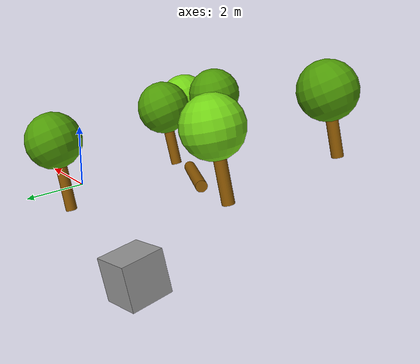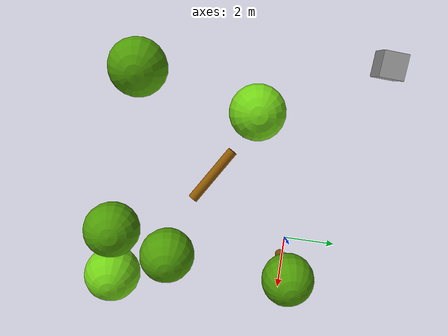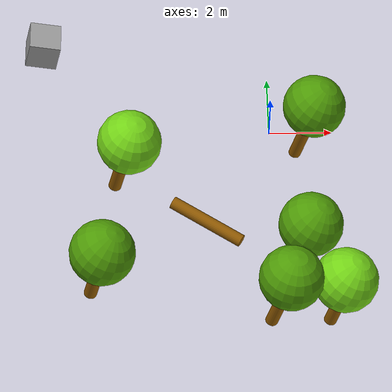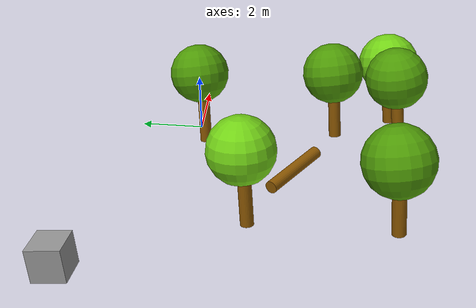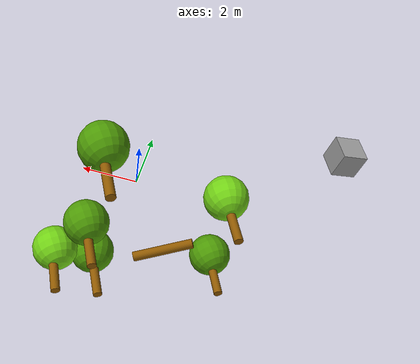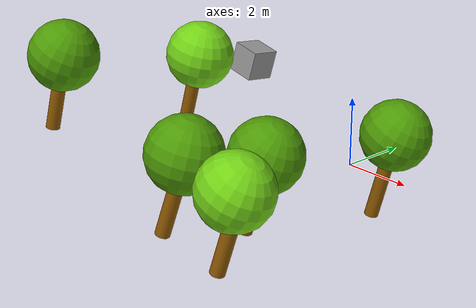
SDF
<?xml version='1.0'?>
<sdf version='1.7'>
  <model name='Obstaculos'>
    <link name='link_3_0'>
      <inertial>
        <mass>1</mass>
        <inertia>
          <ixx>0.166667</ixx>
          <ixy>0</ixy>
          <ixz>0</ixz>
          <iyy>0.166667</iyy>
          <iyz>0</iyz>
          <izz>0.166667</izz>
        </inertia>
      </inertial>
      <pose>-7.21827 2.9354 0.928625 -0.113285 0.207225 -0.035268</pose>
      <self_collide>0</self_collide>
      <enable_wind>0</enable_wind>
      <kinematic>0</kinematic>
      <visual name='visual'>
        <pose>0 0 0 0 -0 0</pose>
        <geometry>
          <box>
            <size>1 1 1</size>
          </box>
        </geometry>
        <material>
          <lighting>1</lighting>
          <script>
            <uri>file://media/materials/scripts/gazebo.material</uri>
            <name>Gazebo/Grey</name>
          </script>
          <shader type='pixel'/>
        </material>
        <transparency>0</transparency>
        <cast_shadows>1</cast_shadows>
      </visual>
      <collision name='collision'>
        <laser_retro>0</laser_retro>
        <max_contacts>10</max_contacts>
        <pose>0 0 0 0 -0 0</pose>
        <geometry>
          <box>
            <size>1 1 1</size>
          </box>
        </geometry>
        <surface>
          <friction>
            <ode>
              <mu>1</mu>
              <mu2>1</mu2>
              <fdir1>0 0 0</fdir1>
              <slip1>0</slip1>
              <slip2>0</slip2>
            </ode>
            <torsional>
              <coefficient>1</coefficient>
              <patch_radius>0</patch_radius>
              <surface_radius>0</surface_radius>
              <use_patch_radius>1</use_patch_radius>
              <ode>
                <slip>0</slip>
              </ode>
            </torsional>
          </friction>
          <bounce>
            <restitution_coefficient>0</restitution_coefficient>
            <threshold>1e+06</threshold>
          </bounce>
          <contact>
            <collide_without_contact>0</collide_without_contact>
            <collide_without_contact_bitmask>1</collide_without_contact_bitmask>
            <collide_bitmask>1</collide_bitmask>
            <ode>
              <soft_cfm>0</soft_cfm>
              <soft_erp>0.2</soft_erp>
              <kp>1e+13</kp>
              <kd>1</kd>
              <max_vel>0.01</max_vel>
              <min_depth>0</min_depth>
            </ode>
            <bullet>
              <split_impulse>1</split_impulse>
              <split_impulse_penetration_threshold>-0.01</split_impulse_penetration_threshold>
              <soft_cfm>0</soft_cfm>
              <soft_erp>0.2</soft_erp>
              <kp>1e+13</kp>
              <kd>1</kd>
            </bullet>
          </contact>
        </surface>
      </collision>
    </link>
    <link name='link_3_clone'>
      <inertial>
        <mass>1</mass>
        <inertia>
          <ixx>0.145833</ixx>
          <ixy>0</ixy>
          <ixz>0</ixz>
          <iyy>0.145833</iyy>
          <iyz>0</iyz>
          <izz>0.125</izz>
        </inertia>
        <pose>0 0 0 0 -0 0</pose>
      </inertial>
      <pose>-4.67416 -1.93226 1.58186 -0.074828 0.21866 0</pose>
      <gravity>1</gravity>
      <self_collide>0</self_collide>
      <kinematic>0</kinematic>
      <enable_wind>0</enable_wind>
      <visual name='visual'>
        <pose>0 0 0 0 -0 0</pose>
        <geometry>
          <cylinder>
            <radius>0.2</radius>
            <length>2.5</length>
          </cylinder>
        </geometry>
        <material>
          <lighting>1</lighting>
          <script>
            <uri>file://media/materials/scripts/gazebo.material</uri>
            <name>Gazebo/Grey</name>
          </script>
          <shader type='pixel'>
            <normal_map>__default__</normal_map>
          </shader>
          <ambient>0.561 0.349 0.008 1</ambient>
          <diffuse>0.561 0.349 0.008 1</diffuse>
          <specular>0.561 0.349 0.008 1</specular>
          <emissive>0.561 0.349 0.008 1</emissive>
        </material>
        <transparency>0</transparency>
        <cast_shadows>1</cast_shadows>
      </visual>
      <collision name='collision'>
        <laser_retro>0</laser_retro>
        <max_contacts>10</max_contacts>
        <pose>0 0 0 0 -0 0</pose>
        <geometry>
          <cylinder>
            <radius>0.2</radius>
            <length>2.5</length>
          </cylinder>
        </geometry>
        <surface>
          <friction>
            <ode>
              <mu>1</mu>
              <mu2>1</mu2>
              <fdir1>0 0 0</fdir1>
              <slip1>0</slip1>
              <slip2>0</slip2>
            </ode>
            <torsional>
              <coefficient>1</coefficient>
              <patch_radius>0</patch_radius>
              <surface_radius>0</surface_radius>
              <use_patch_radius>1</use_patch_radius>
              <ode>
                <slip>0</slip>
              </ode>
            </torsional>
          </friction>
          <bounce>
            <restitution_coefficient>0</restitution_coefficient>
            <threshold>1e+06</threshold>
          </bounce>
          <contact>
            <collide_without_contact>0</collide_without_contact>
            <collide_without_contact_bitmask>1</collide_without_contact_bitmask>
            <collide_bitmask>1</collide_bitmask>
            <ode>
              <soft_cfm>0</soft_cfm>
              <soft_erp>0.2</soft_erp>
              <kp>1e+13</kp>
              <kd>1</kd>
              <max_vel>0.01</max_vel>
              <min_depth>0</min_depth>
            </ode>
            <bullet>
              <split_impulse>1</split_impulse>
              <split_impulse_penetration_threshold>-0.01</split_impulse_penetration_threshold>
              <soft_cfm>0</soft_cfm>
              <soft_erp>0.2</soft_erp>
              <kp>1e+13</kp>
              <kd>1</kd>
            </bullet>
          </contact>
        </surface>
      </collision>
    </link>
    <link name='link_3_clone_clone'>
      <inertial>
        <mass>1</mass>
        <inertia>
          <ixx>0.145833</ixx>
          <ixy>0</ixy>
          <ixz>0</ixz>
          <iyy>0.145833</iyy>
          <iyz>0</iyz>
          <izz>0.125</izz>
        </inertia>
        <pose>0 0 0 0 -0 0</pose>
      </inertial>
      <pose>1.95958 -6.296 0.673899 -0.132489 0.235564 -0.023799</pose>
      <gravity>1</gravity>
      <self_collide>0</self_collide>
      <kinematic>0</kinematic>
      <enable_wind>0</enable_wind>
      <visual name='visual'>
        <pose>0 0 0 0 -0 0</pose>
        <geometry>
          <cylinder>
            <radius>0.2</radius>
            <length>2.5</length>
          </cylinder>
        </geometry>
        <material>
          <lighting>1</lighting>
          <script>
            <uri>file://media/materials/scripts/gazebo.material</uri>
            <name>Gazebo/Grey</name>
          </script>
          <shader type='pixel'>
            <normal_map>__default__</normal_map>
          </shader>
          <ambient>0.561 0.349 0.008 1</ambient>
          <diffuse>0.561 0.349 0.008 1</diffuse>
          <specular>0.561 0.349 0.008 1</specular>
          <emissive>0.561 0.349 0.008 1</emissive>
        </material>
        <transparency>0</transparency>
        <cast_shadows>1</cast_shadows>
      </visual>
      <collision name='collision'>
        <laser_retro>0</laser_retro>
        <max_contacts>10</max_contacts>
        <pose>0 0 0 0 -0 0</pose>
        <geometry>
          <cylinder>
            <radius>0.2</radius>
            <length>2.5</length>
          </cylinder>
        </geometry>
        <surface>
          <friction>
            <ode>
              <mu>1</mu>
              <mu2>1</mu2>
              <fdir1>0 0 0</fdir1>
              <slip1>0</slip1>
              <slip2>0</slip2>
            </ode>
            <torsional>
              <coefficient>1</coefficient>
              <patch_radius>0</patch_radius>
              <surface_radius>0</surface_radius>
              <use_patch_radius>1</use_patch_radius>
              <ode>
                <slip>0</slip>
              </ode>
            </torsional>
          </friction>
          <bounce>
            <restitution_coefficient>0</restitution_coefficient>
            <threshold>1e+06</threshold>
          </bounce>
          <contact>
            <collide_without_contact>0</collide_without_contact>
            <collide_without_contact_bitmask>1</collide_without_contact_bitmask>
            <collide_bitmask>1</collide_bitmask>
            <ode>
              <soft_cfm>0</soft_cfm>
              <soft_erp>0.2</soft_erp>
              <kp>1e+13</kp>
              <kd>1</kd>
              <max_vel>0.01</max_vel>
              <min_depth>0</min_depth>
            </ode>
            <bullet>
              <split_impulse>1</split_impulse>
              <split_impulse_penetration_threshold>-0.01</split_impulse_penetration_threshold>
              <soft_cfm>0</soft_cfm>
              <soft_erp>0.2</soft_erp>
              <kp>1e+13</kp>
              <kd>1</kd>
            </bullet>
          </contact>
        </surface>
      </collision>
    </link>
    <link name='link_3_clone_clone_0'>
      <inertial>
        <mass>1</mass>
        <inertia>
          <ixx>0.145833</ixx>
          <ixy>0</ixy>
          <ixz>0</ixz>
          <iyy>0.145833</iyy>
          <iyz>0</iyz>
          <izz>0.125</izz>
        </inertia>
        <pose>0 0 0 0 -0 0</pose>
      </inertial>
      <pose>-2.06574 -3.24197 0.103919 -1.89298 1.29233 -2.43723</pose>
      <gravity>1</gravity>
      <self_collide>0</self_collide>
      <kinematic>0</kinematic>
      <enable_wind>0</enable_wind>
      <visual name='visual'>
        <pose>0 0 0 0 -0 0</pose>
        <geometry>
          <cylinder>
            <radius>0.2</radius>
            <length>2.5</length>
          </cylinder>
        </geometry>
        <material>
          <lighting>1</lighting>
          <script>
            <uri>file://media/materials/scripts/gazebo.material</uri>
            <name>Gazebo/Grey</name>
          </script>
          <shader type='pixel'>
            <normal_map>__default__</normal_map>
          </shader>
          <ambient>0.561 0.349 0.008 1</ambient>
          <diffuse>0.561 0.349 0.008 1</diffuse>
          <specular>0.561 0.349 0.008 1</specular>
          <emissive>0.561 0.349 0.008 1</emissive>
        </material>
        <transparency>0</transparency>
        <cast_shadows>1</cast_shadows>
      </visual>
      <collision name='collision'>
        <laser_retro>0</laser_retro>
        <max_contacts>10</max_contacts>
        <pose>0 0 0 0 -0 0</pose>
        <geometry>
          <cylinder>
            <radius>0.2</radius>
            <length>2.5</length>
          </cylinder>
        </geometry>
        <surface>
          <friction>
            <ode>
              <mu>1</mu>
              <mu2>1</mu2>
              <fdir1>0 0 0</fdir1>
              <slip1>0</slip1>
              <slip2>0</slip2>
            </ode>
            <torsional>
              <coefficient>1</coefficient>
              <patch_radius>0</patch_radius>
              <surface_radius>0</surface_radius>
              <use_patch_radius>1</use_patch_radius>
              <ode>
                <slip>0</slip>
              </ode>
            </torsional>
          </friction>
          <bounce>
            <restitution_coefficient>0</restitution_coefficient>
            <threshold>1e+06</threshold>
          </bounce>
          <contact>
            <collide_without_contact>0</collide_without_contact>
            <collide_without_contact_bitmask>1</collide_without_contact_bitmask>
            <collide_bitmask>1</collide_bitmask>
            <ode>
              <soft_cfm>0</soft_cfm>
              <soft_erp>0.2</soft_erp>
              <kp>1e+13</kp>
              <kd>1</kd>
              <max_vel>0.01</max_vel>
              <min_depth>0</min_depth>
            </ode>
            <bullet>
              <split_impulse>1</split_impulse>
              <split_impulse_penetration_threshold>-0.01</split_impulse_penetration_threshold>
              <soft_cfm>0</soft_cfm>
              <soft_erp>0.2</soft_erp>
              <kp>1e+13</kp>
              <kd>1</kd>
            </bullet>
          </contact>
        </surface>
      </collision>
    </link>
    <link name='link_3_clone_clone_1'>
      <inertial>
        <mass>1</mass>
        <inertia>
          <ixx>0.145833</ixx>
          <ixy>0</ixy>
          <ixz>0</ixz>
          <iyy>0.145833</iyy>
          <iyz>0</iyz>
          <izz>0.125</izz>
        </inertia>
        <pose>0 0 0 0 -0 0</pose>
      </inertial>
      <pose>0.856938 -4.4428 0.769022 -0.089681 0.244586 -0.025529</pose>
      <gravity>1</gravity>
      <self_collide>0</self_collide>
      <kinematic>0</kinematic>
      <enable_wind>0</enable_wind>
      <visual name='visual'>
        <pose>0 0 0 0 -0 0</pose>
        <geometry>
          <cylinder>
            <radius>0.2</radius>
            <length>2.5</length>
          </cylinder>
        </geometry>
        <material>
          <lighting>1</lighting>
          <script>
            <uri>file://media/materials/scripts/gazebo.material</uri>
            <name>Gazebo/Grey</name>
          </script>
          <shader type='pixel'>
            <normal_map>__default__</normal_map>
          </shader>
          <ambient>0.561 0.349 0.008 1</ambient>
          <diffuse>0.561 0.349 0.008 1</diffuse>
          <specular>0.561 0.349 0.008 1</specular>
          <emissive>0.561 0.349 0.008 1</emissive>
        </material>
        <transparency>0</transparency>
        <cast_shadows>1</cast_shadows>
      </visual>
      <collision name='collision'>
        <laser_retro>0</laser_retro>
        <max_contacts>10</max_contacts>
        <pose>0 0 0 0 -0 0</pose>
        <geometry>
          <cylinder>
            <radius>0.2</radius>
            <length>2.5</length>
          </cylinder>
        </geometry>
        <surface>
          <friction>
            <ode>
              <mu>1</mu>
              <mu2>1</mu2>
              <fdir1>0 0 0</fdir1>
              <slip1>0</slip1>
              <slip2>0</slip2>
            </ode>
            <torsional>
              <coefficient>1</coefficient>
              <patch_radius>0</patch_radius>
              <surface_radius>0</surface_radius>
              <use_patch_radius>1</use_patch_radius>
              <ode>
                <slip>0</slip>
              </ode>
            </torsional>
          </friction>
          <bounce>
            <restitution_coefficient>0</restitution_coefficient>
            <threshold>1e+06</threshold>
          </bounce>
          <contact>
            <collide_without_contact>0</collide_without_contact>
            <collide_without_contact_bitmask>1</collide_without_contact_bitmask>
            <collide_bitmask>1</collide_bitmask>
            <ode>
              <soft_cfm>0</soft_cfm>
              <soft_erp>0.2</soft_erp>
              <kp>1e+13</kp>
              <kd>1</kd>
              <max_vel>0.01</max_vel>
              <min_depth>0</min_depth>
            </ode>
            <bullet>
              <split_impulse>1</split_impulse>
              <split_impulse_penetration_threshold>-0.01</split_impulse_penetration_threshold>
              <soft_cfm>0</soft_cfm>
              <soft_erp>0.2</soft_erp>
              <kp>1e+13</kp>
              <kd>1</kd>
            </bullet>
          </contact>
        </surface>
      </collision>
    </link>
    <link name='link_3_clone_clone_1_clone'>
      <inertial>
        <mass>1</mass>
        <inertia>
          <ixx>0.145833</ixx>
          <ixy>0</ixy>
          <ixz>0</ixz>
          <iyy>0.145833</iyy>
          <iyz>0</iyz>
          <izz>0.125</izz>
        </inertia>
        <pose>0 0 0 0 -0 0</pose>
      </inertial>
      <pose>0.151414 -6.48738 1.0964 -0.14589 0.256427 -0.049538</pose>
      <gravity>1</gravity>
      <self_collide>0</self_collide>
      <kinematic>0</kinematic>
      <enable_wind>0</enable_wind>
      <visual name='visual'>
        <pose>0 0 0 0 -0 0</pose>
        <geometry>
          <cylinder>
            <radius>0.2</radius>
            <length>2.5</length>
          </cylinder>
        </geometry>
        <material>
          <lighting>1</lighting>
          <script>
            <uri>file://media/materials/scripts/gazebo.material</uri>
            <name>Gazebo/Grey</name>
          </script>
          <shader type='pixel'>
            <normal_map>__default__</normal_map>
          </shader>
          <ambient>0.561 0.349 0.008 1</ambient>
          <diffuse>0.561 0.349 0.008 1</diffuse>
          <specular>0.561 0.349 0.008 1</specular>
          <emissive>0.561 0.349 0.008 1</emissive>
        </material>
        <transparency>0</transparency>
        <cast_shadows>1</cast_shadows>
      </visual>
      <collision name='collision'>
        <laser_retro>0</laser_retro>
        <max_contacts>10</max_contacts>
        <pose>0 0 0 0 -0 0</pose>
        <geometry>
          <cylinder>
            <radius>0.2</radius>
            <length>2.5</length>
          </cylinder>
        </geometry>
        <surface>
          <friction>
            <ode>
              <mu>1</mu>
              <mu2>1</mu2>
              <fdir1>0 0 0</fdir1>
              <slip1>0</slip1>
              <slip2>0</slip2>
            </ode>
            <torsional>
              <coefficient>1</coefficient>
              <patch_radius>0</patch_radius>
              <surface_radius>0</surface_radius>
              <use_patch_radius>1</use_patch_radius>
              <ode>
                <slip>0</slip>
              </ode>
            </torsional>
          </friction>
          <bounce>
            <restitution_coefficient>0</restitution_coefficient>
            <threshold>1e+06</threshold>
          </bounce>
          <contact>
            <collide_without_contact>0</collide_without_contact>
            <collide_without_contact_bitmask>1</collide_without_contact_bitmask>
            <collide_bitmask>1</collide_bitmask>
            <ode>
              <soft_cfm>0</soft_cfm>
              <soft_erp>0.2</soft_erp>
              <kp>1e+13</kp>
              <kd>1</kd>
              <max_vel>0.01</max_vel>
              <min_depth>0</min_depth>
            </ode>
            <bullet>
              <split_impulse>1</split_impulse>
              <split_impulse_penetration_threshold>-0.01</split_impulse_penetration_threshold>
              <soft_cfm>0</soft_cfm>
              <soft_erp>0.2</soft_erp>
              <kp>1e+13</kp>
              <kd>1</kd>
            </bullet>
          </contact>
        </surface>
      </collision>
    </link>
    <link name='link_3_clone_clone_1_clone_0'>
      <inertial>
        <mass>1</mass>
        <inertia>
          <ixx>0.145833</ixx>
          <ixy>0</ixy>
          <ixz>0</ixz>
          <iyy>0.145833</iyy>
          <iyz>0</iyz>
          <izz>0.125</izz>
        </inertia>
        <pose>0 0 0 0 -0 0</pose>
      </inertial>
      <pose>1.16041 0.084874 -0.018122 -0.066668 0.231636 -0.032342</pose>
      <gravity>1</gravity>
      <self_collide>0</self_collide>
      <kinematic>0</kinematic>
      <enable_wind>0</enable_wind>
      <visual name='visual'>
        <pose>0 0 0 0 -0 0</pose>
        <geometry>
          <cylinder>
            <radius>0.2</radius>
            <length>2.5</length>
          </cylinder>
        </geometry>
        <material>
          <lighting>1</lighting>
          <script>
            <uri>file://media/materials/scripts/gazebo.material</uri>
            <name>Gazebo/Grey</name>
          </script>
          <shader type='pixel'>
            <normal_map>__default__</normal_map>
          </shader>
          <ambient>0.561 0.349 0.008 1</ambient>
          <diffuse>0.561 0.349 0.008 1</diffuse>
          <specular>0.561 0.349 0.008 1</specular>
          <emissive>0.561 0.349 0.008 1</emissive>
        </material>
        <transparency>0</transparency>
        <cast_shadows>1</cast_shadows>
      </visual>
      <collision name='collision'>
        <laser_retro>0</laser_retro>
        <max_contacts>10</max_contacts>
        <pose>0 0 0 0 -0 0</pose>
        <geometry>
          <cylinder>
            <radius>0.2</radius>
            <length>2.5</length>
          </cylinder>
        </geometry>
        <surface>
          <friction>
            <ode>
              <mu>1</mu>
              <mu2>1</mu2>
              <fdir1>0 0 0</fdir1>
              <slip1>0</slip1>
              <slip2>0</slip2>
            </ode>
            <torsional>
              <coefficient>1</coefficient>
              <patch_radius>0</patch_radius>
              <surface_radius>0</surface_radius>
              <use_patch_radius>1</use_patch_radius>
              <ode>
                <slip>0</slip>
              </ode>
            </torsional>
          </friction>
          <bounce>
            <restitution_coefficient>0</restitution_coefficient>
            <threshold>1e+06</threshold>
          </bounce>
          <contact>
            <collide_without_contact>0</collide_without_contact>
            <collide_without_contact_bitmask>1</collide_without_contact_bitmask>
            <collide_bitmask>1</collide_bitmask>
            <ode>
              <soft_cfm>0</soft_cfm>
              <soft_erp>0.2</soft_erp>
              <kp>1e+13</kp>
              <kd>1</kd>
              <max_vel>0.01</max_vel>
              <min_depth>0</min_depth>
            </ode>
            <bullet>
              <split_impulse>1</split_impulse>
              <split_impulse_penetration_threshold>-0.01</split_impulse_penetration_threshold>
              <soft_cfm>0</soft_cfm>
              <soft_erp>0.2</soft_erp>
              <kp>1e+13</kp>
              <kd>1</kd>
            </bullet>
          </contact>
        </surface>
      </collision>
    </link>
    <link name='link_3_clone_clone_2'>
      <inertial>
        <mass>1</mass>
        <inertia>
          <ixx>0.145833</ixx>
          <ixy>0</ixy>
          <ixz>0</ixz>
          <iyy>0.145833</iyy>
          <iyz>0</iyz>
          <izz>0.125</izz>
        </inertia>
        <pose>0 0 0 0 -0 0</pose>
      </inertial>
      <pose>-5.43137 -6.10106 2.32312 -0.089312 0.20991 -0.018917</pose>
      <gravity>1</gravity>
      <self_collide>0</self_collide>
      <kinematic>0</kinematic>
      <enable_wind>0</enable_wind>
      <visual name='visual'>
        <pose>0 0 0 0 -0 0</pose>
        <geometry>
          <cylinder>
            <radius>0.2</radius>
            <length>2.5</length>
          </cylinder>
        </geometry>
        <material>
          <lighting>1</lighting>
          <script>
            <uri>file://media/materials/scripts/gazebo.material</uri>
            <name>Gazebo/Grey</name>
          </script>
          <shader type='pixel'>
            <normal_map>__default__</normal_map>
          </shader>
          <ambient>0.561 0.349 0.008 1</ambient>
          <diffuse>0.561 0.349 0.008 1</diffuse>
          <specular>0.561 0.349 0.008 1</specular>
          <emissive>0.561 0.349 0.008 1</emissive>
        </material>
        <transparency>0</transparency>
        <cast_shadows>1</cast_shadows>
      </visual>
      <collision name='collision'>
        <laser_retro>0</laser_retro>
        <max_contacts>10</max_contacts>
        <pose>0 0 0 0 -0 0</pose>
        <geometry>
          <cylinder>
            <radius>0.2</radius>
            <length>2.5</length>
          </cylinder>
        </geometry>
        <surface>
          <friction>
            <ode>
              <mu>1</mu>
              <mu2>1</mu2>
              <fdir1>0 0 0</fdir1>
              <slip1>0</slip1>
              <slip2>0</slip2>
            </ode>
            <torsional>
              <coefficient>1</coefficient>
              <patch_radius>0</patch_radius>
              <surface_radius>0</surface_radius>
              <use_patch_radius>1</use_patch_radius>
              <ode>
                <slip>0</slip>
              </ode>
            </torsional>
          </friction>
          <bounce>
            <restitution_coefficient>0</restitution_coefficient>
            <threshold>1e+06</threshold>
          </bounce>
          <contact>
            <collide_without_contact>0</collide_without_contact>
            <collide_without_contact_bitmask>1</collide_without_contact_bitmask>
            <collide_bitmask>1</collide_bitmask>
            <ode>
              <soft_cfm>0</soft_cfm>
              <soft_erp>0.2</soft_erp>
              <kp>1e+13</kp>
              <kd>1</kd>
              <max_vel>0.01</max_vel>
              <min_depth>0</min_depth>
            </ode>
            <bullet>
              <split_impulse>1</split_impulse>
              <split_impulse_penetration_threshold>-0.01</split_impulse_penetration_threshold>
              <soft_cfm>0</soft_cfm>
              <soft_erp>0.2</soft_erp>
              <kp>1e+13</kp>
              <kd>1</kd>
            </bullet>
          </contact>
        </surface>
      </collision>
    </link>
    <link name='link_4_clone'>
      <inertial>
        <mass>1</mass>
        <inertia>
          <ixx>0.1</ixx>
          <ixy>0</ixy>
          <ixz>0</ixz>
          <iyy>0.1</iyy>
          <iyz>0</iyz>
          <izz>0.1</izz>
        </inertia>
        <pose>0 0 0 0 -0 0</pose>
      </inertial>
      <pose>-4.43155 -1.81557 2.65537 -0.080566 0.247735 -0.057266</pose>
      <gravity>1</gravity>
      <self_collide>0</self_collide>
      <kinematic>0</kinematic>
      <enable_wind>0</enable_wind>
      <visual name='visual'>
        <pose>0 0 0 0 -0 0</pose>
        <geometry>
          <sphere>
            <radius>1</radius>
          </sphere>
        </geometry>
        <material>
          <lighting>1</lighting>
          <script>
            <uri>file://media/materials/scripts/gazebo.material</uri>
            <name>Gazebo/Grey</name>
          </script>
          <shader type='pixel'>
            <normal_map>__default__</normal_map>
          </shader>
          <ambient>0.451 0.824 0.086 1</ambient>
          <diffuse>0.451 0.824 0.086 1</diffuse>
          <specular>0.451 0.824 0.086 1</specular>
          <emissive>0.451 0.824 0.086 1</emissive>
        </material>
        <transparency>0</transparency>
        <cast_shadows>1</cast_shadows>
      </visual>
      <collision name='collision'>
        <laser_retro>0</laser_retro>
        <max_contacts>10</max_contacts>
        <pose>0 0 0 0 -0 0</pose>
        <geometry>
          <sphere>
            <radius>1</radius>
          </sphere>
        </geometry>
        <surface>
          <friction>
            <ode>
              <mu>1</mu>
              <mu2>1</mu2>
              <fdir1>0 0 0</fdir1>
              <slip1>0</slip1>
              <slip2>0</slip2>
            </ode>
            <torsional>
              <coefficient>1</coefficient>
              <patch_radius>0</patch_radius>
              <surface_radius>0</surface_radius>
              <use_patch_radius>1</use_patch_radius>
              <ode>
                <slip>0</slip>
              </ode>
            </torsional>
          </friction>
          <bounce>
            <restitution_coefficient>0</restitution_coefficient>
            <threshold>1e+06</threshold>
          </bounce>
          <contact>
            <collide_without_contact>0</collide_without_contact>
            <collide_without_contact_bitmask>1</collide_without_contact_bitmask>
            <collide_bitmask>1</collide_bitmask>
            <ode>
              <soft_cfm>0</soft_cfm>
              <soft_erp>0.2</soft_erp>
              <kp>1e+13</kp>
              <kd>1</kd>
              <max_vel>0.01</max_vel>
              <min_depth>0</min_depth>
            </ode>
            <bullet>
              <split_impulse>1</split_impulse>
              <split_impulse_penetration_threshold>-0.01</split_impulse_penetration_threshold>
              <soft_cfm>0</soft_cfm>
              <soft_erp>0.2</soft_erp>
              <kp>1e+13</kp>
              <kd>1</kd>
            </bullet>
          </contact>
        </surface>
      </collision>
    </link>
    <link name='link_4_clone_clone'>
      <inertial>
        <mass>1</mass>
        <inertia>
          <ixx>0.1</ixx>
          <ixy>0</ixy>
          <ixz>0</ixz>
          <iyy>0.1</iyy>
          <iyz>0</iyz>
          <izz>0.1</izz>
        </inertia>
        <pose>0 0 0 0 -0 0</pose>
      </inertial>
      <pose>0.388208 -6.36287 2.11808 -0.197677 0.164007 -0.065337</pose>
      <gravity>1</gravity>
      <self_collide>0</self_collide>
      <kinematic>0</kinematic>
      <enable_wind>0</enable_wind>
      <visual name='visual'>
        <pose>0 0 0 0 -0 0</pose>
        <geometry>
          <sphere>
            <radius>1</radius>
          </sphere>
        </geometry>
        <material>
          <lighting>1</lighting>
          <script>
            <uri>file://media/materials/scripts/gazebo.material</uri>
            <name>Gazebo/Grey</name>
          </script>
          <shader type='pixel'>
            <normal_map>__default__</normal_map>
          </shader>
          <ambient>0.306 0.604 0.024 1</ambient>
          <diffuse>0.306 0.604 0.024 1</diffuse>
          <specular>0.306 0.604 0.024 1</specular>
          <emissive>0.306 0.604 0.024 1</emissive>
        </material>
        <transparency>0</transparency>
        <cast_shadows>1</cast_shadows>
      </visual>
      <collision name='collision'>
        <laser_retro>0</laser_retro>
        <max_contacts>10</max_contacts>
        <pose>0 0 0 0 -0 0</pose>
        <geometry>
          <sphere>
            <radius>1</radius>
          </sphere>
        </geometry>
        <surface>
          <friction>
            <ode>
              <mu>1</mu>
              <mu2>1</mu2>
              <fdir1>0 0 0</fdir1>
              <slip1>0</slip1>
              <slip2>0</slip2>
            </ode>
            <torsional>
              <coefficient>1</coefficient>
              <patch_radius>0</patch_radius>
              <surface_radius>0</surface_radius>
              <use_patch_radius>1</use_patch_radius>
              <ode>
                <slip>0</slip>
              </ode>
            </torsional>
          </friction>
          <bounce>
            <restitution_coefficient>0</restitution_coefficient>
            <threshold>1e+06</threshold>
          </bounce>
          <contact>
            <collide_without_contact>0</collide_without_contact>
            <collide_without_contact_bitmask>1</collide_without_contact_bitmask>
            <collide_bitmask>1</collide_bitmask>
            <ode>
              <soft_cfm>0</soft_cfm>
              <soft_erp>0.2</soft_erp>
              <kp>1e+13</kp>
              <kd>1</kd>
              <max_vel>0.01</max_vel>
              <min_depth>0</min_depth>
            </ode>
            <bullet>
              <split_impulse>1</split_impulse>
              <split_impulse_penetration_threshold>-0.01</split_impulse_penetration_threshold>
              <soft_cfm>0</soft_cfm>
              <soft_erp>0.2</soft_erp>
              <kp>1e+13</kp>
              <kd>1</kd>
            </bullet>
          </contact>
        </surface>
      </collision>
    </link>
    <link name='link_4_clone_clone_0'>
      <inertial>
        <mass>1</mass>
        <inertia>
          <ixx>0.1</ixx>
          <ixy>0</ixy>
          <ixz>0</ixz>
          <iyy>0.1</iyy>
          <iyz>0</iyz>
          <izz>0.1</izz>
        </inertia>
        <pose>0 0 0 0 -0 0</pose>
      </inertial>
      <pose>1.07941 -4.33069 1.74882 -0.216459 0.446069 -0.127235</pose>
      <gravity>1</gravity>
      <self_collide>0</self_collide>
      <kinematic>0</kinematic>
      <enable_wind>0</enable_wind>
      <visual name='visual'>
        <pose>0 0 0 0 -0 0</pose>
        <geometry>
          <sphere>
            <radius>1</radius>
          </sphere>
        </geometry>
        <material>
          <lighting>1</lighting>
          <script>
            <uri>file://media/materials/scripts/gazebo.material</uri>
            <name>Gazebo/Grey</name>
          </script>
          <shader type='pixel'>
            <normal_map>__default__</normal_map>
          </shader>
          <ambient>0.306 0.604 0.024 1</ambient>
          <diffuse>0.306 0.604 0.024 1</diffuse>
          <specular>0.306 0.604 0.024 1</specular>
          <emissive>0.306 0.604 0.024 1</emissive>
        </material>
        <transparency>0</transparency>
        <cast_shadows>1</cast_shadows>
      </visual>
      <collision name='collision'>
        <laser_retro>0</laser_retro>
        <max_contacts>10</max_contacts>
        <pose>0 0 0 0 -0 0</pose>
        <geometry>
          <sphere>
            <radius>1</radius>
          </sphere>
        </geometry>
        <surface>
          <friction>
            <ode>
              <mu>1</mu>
              <mu2>1</mu2>
              <fdir1>0 0 0</fdir1>
              <slip1>0</slip1>
              <slip2>0</slip2>
            </ode>
            <torsional>
              <coefficient>1</coefficient>
              <patch_radius>0</patch_radius>
              <surface_radius>0</surface_radius>
              <use_patch_radius>1</use_patch_radius>
              <ode>
                <slip>0</slip>
              </ode>
            </torsional>
          </friction>
          <bounce>
            <restitution_coefficient>0</restitution_coefficient>
            <threshold>1e+06</threshold>
          </bounce>
          <contact>
            <collide_without_contact>0</collide_without_contact>
            <collide_without_contact_bitmask>1</collide_without_contact_bitmask>
            <collide_bitmask>1</collide_bitmask>
            <ode>
              <soft_cfm>0</soft_cfm>
              <soft_erp>0.2</soft_erp>
              <kp>1e+13</kp>
              <kd>1</kd>
              <max_vel>0.01</max_vel>
              <min_depth>0</min_depth>
            </ode>
            <bullet>
              <split_impulse>1</split_impulse>
              <split_impulse_penetration_threshold>-0.01</split_impulse_penetration_threshold>
              <soft_cfm>0</soft_cfm>
              <soft_erp>0.2</soft_erp>
              <kp>1e+13</kp>
              <kd>1</kd>
            </bullet>
          </contact>
        </surface>
      </collision>
    </link>
    <link name='link_4_clone_clone_1'>
      <inertial>
        <mass>1</mass>
        <inertia>
          <ixx>0.1</ixx>
          <ixy>0</ixy>
          <ixz>0</ixz>
          <iyy>0.1</iyy>
          <iyz>0</iyz>
          <izz>0.1</izz>
        </inertia>
        <pose>0 0 0 0 -0 0</pose>
      </inertial>
      <pose>1.42012 0.229102 1.24846 -0.216459 0.446069 -0.127235</pose>
      <gravity>1</gravity>
      <self_collide>0</self_collide>
      <kinematic>0</kinematic>
      <enable_wind>0</enable_wind>
      <visual name='visual'>
        <pose>0 0 0 0 -0 0</pose>
        <geometry>
          <sphere>
            <radius>1</radius>
          </sphere>
        </geometry>
        <material>
          <lighting>1</lighting>
          <script>
            <uri>file://media/materials/scripts/gazebo.material</uri>
            <name>Gazebo/Grey</name>
          </script>
          <shader type='pixel'>
            <normal_map>__default__</normal_map>
          </shader>
          <ambient>0.306 0.604 0.024 1</ambient>
          <diffuse>0.306 0.604 0.024 1</diffuse>
          <specular>0.306 0.604 0.024 1</specular>
          <emissive>0.306 0.604 0.024 1</emissive>
        </material>
        <transparency>0</transparency>
        <cast_shadows>1</cast_shadows>
      </visual>
      <collision name='collision'>
        <laser_retro>0</laser_retro>
        <max_contacts>10</max_contacts>
        <pose>0 0 0 0 -0 0</pose>
        <geometry>
          <sphere>
            <radius>1</radius>
          </sphere>
        </geometry>
        <surface>
          <friction>
            <ode>
              <mu>1</mu>
              <mu2>1</mu2>
              <fdir1>0 0 0</fdir1>
              <slip1>0</slip1>
              <slip2>0</slip2>
            </ode>
            <torsional>
              <coefficient>1</coefficient>
              <patch_radius>0</patch_radius>
              <surface_radius>0</surface_radius>
              <use_patch_radius>1</use_patch_radius>
              <ode>
                <slip>0</slip>
              </ode>
            </torsional>
          </friction>
          <bounce>
            <restitution_coefficient>0</restitution_coefficient>
            <threshold>1e+06</threshold>
          </bounce>
          <contact>
            <collide_without_contact>0</collide_without_contact>
            <collide_without_contact_bitmask>1</collide_without_contact_bitmask>
            <collide_bitmask>1</collide_bitmask>
            <ode>
              <soft_cfm>0</soft_cfm>
              <soft_erp>0.2</soft_erp>
              <kp>1e+13</kp>
              <kd>1</kd>
              <max_vel>0.01</max_vel>
              <min_depth>0</min_depth>
            </ode>
            <bullet>
              <split_impulse>1</split_impulse>
              <split_impulse_penetration_threshold>-0.01</split_impulse_penetration_threshold>
              <soft_cfm>0</soft_cfm>
              <soft_erp>0.2</soft_erp>
              <kp>1e+13</kp>
              <kd>1</kd>
            </bullet>
          </contact>
        </surface>
      </collision>
    </link>
    <link name='link_4_clone_clone_2'>
      <inertial>
        <mass>1</mass>
        <inertia>
          <ixx>0.1</ixx>
          <ixy>0</ixy>
          <ixz>0</ixz>
          <iyy>0.1</iyy>
          <iyz>0</iyz>
          <izz>0.1</izz>
        </inertia>
        <pose>0 0 0 0 -0 0</pose>
      </inertial>
      <pose>2.04907 -6.22572 1.65249 -0.216459 0.446069 -0.127235</pose>
      <gravity>1</gravity>
      <self_collide>0</self_collide>
      <kinematic>0</kinematic>
      <enable_wind>0</enable_wind>
      <visual name='visual'>
        <pose>0 0 0 0 -0 0</pose>
        <geometry>
          <sphere>
            <radius>1</radius>
          </sphere>
        </geometry>
        <material>
          <lighting>1</lighting>
          <script>
            <uri>file://media/materials/scripts/gazebo.material</uri>
            <name>Gazebo/Grey</name>
          </script>
          <shader type='pixel'>
            <normal_map>__default__</normal_map>
          </shader>
          <ambient>0.451 0.824 0.086 1</ambient>
          <diffuse>0.451 0.824 0.086 1</diffuse>
          <specular>0.451 0.824 0.086 1</specular>
          <emissive>0.451 0.824 0.086 1</emissive>
        </material>
        <transparency>0</transparency>
        <cast_shadows>1</cast_shadows>
      </visual>
      <collision name='collision'>
        <laser_retro>0</laser_retro>
        <max_contacts>10</max_contacts>
        <pose>0 0 0 0 -0 0</pose>
        <geometry>
          <sphere>
            <radius>1</radius>
          </sphere>
        </geometry>
        <surface>
          <friction>
            <ode>
              <mu>1</mu>
              <mu2>1</mu2>
              <fdir1>0 0 0</fdir1>
              <slip1>0</slip1>
              <slip2>0</slip2>
            </ode>
            <torsional>
              <coefficient>1</coefficient>
              <patch_radius>0</patch_radius>
              <surface_radius>0</surface_radius>
              <use_patch_radius>1</use_patch_radius>
              <ode>
                <slip>0</slip>
              </ode>
            </torsional>
          </friction>
          <bounce>
            <restitution_coefficient>0</restitution_coefficient>
            <threshold>1e+06</threshold>
          </bounce>
          <contact>
            <collide_without_contact>0</collide_without_contact>
            <collide_without_contact_bitmask>1</collide_without_contact_bitmask>
            <collide_bitmask>1</collide_bitmask>
            <ode>
              <soft_cfm>0</soft_cfm>
              <soft_erp>0.2</soft_erp>
              <kp>1e+13</kp>
              <kd>1</kd>
              <max_vel>0.01</max_vel>
              <min_depth>0</min_depth>
            </ode>
            <bullet>
              <split_impulse>1</split_impulse>
              <split_impulse_penetration_threshold>-0.01</split_impulse_penetration_threshold>
              <soft_cfm>0</soft_cfm>
              <soft_erp>0.2</soft_erp>
              <kp>1e+13</kp>
              <kd>1</kd>
            </bullet>
          </contact>
        </surface>
      </collision>
    </link>
    <link name='link_4_clone_clone_3'>
      <inertial>
        <mass>1</mass>
        <inertia>
          <ixx>0.1</ixx>
          <ixy>0</ixy>
          <ixz>0</ixz>
          <iyy>0.1</iyy>
          <iyz>0</iyz>
          <izz>0.1</izz>
        </inertia>
        <pose>0 0 0 0 -0 0</pose>
      </inertial>
      <pose>-5.25729 -5.98797 3.26424 -0.216461 0.446069 -0.127235</pose>
      <gravity>1</gravity>
      <self_collide>0</self_collide>
      <kinematic>0</kinematic>
      <enable_wind>0</enable_wind>
      <visual name='visual'>
        <pose>0 0 0 0 -0 0</pose>
        <geometry>
          <sphere>
            <radius>1</radius>
          </sphere>
        </geometry>
        <material>
          <lighting>1</lighting>
          <script>
            <uri>file://media/materials/scripts/gazebo.material</uri>
            <name>Gazebo/Grey</name>
          </script>
          <shader type='pixel'>
            <normal_map>__default__</normal_map>
          </shader>
          <ambient>0.306 0.604 0.024 1</ambient>
          <diffuse>0.306 0.604 0.024 1</diffuse>
          <specular>0.306 0.604 0.024 1</specular>
          <emissive>0.306 0.604 0.024 1</emissive>
        </material>
        <transparency>0</transparency>
        <cast_shadows>1</cast_shadows>
      </visual>
      <collision name='collision'>
        <laser_retro>0</laser_retro>
        <max_contacts>10</max_contacts>
        <pose>0 0 0 0 -0 0</pose>
        <geometry>
          <sphere>
            <radius>1</radius>
          </sphere>
        </geometry>
        <surface>
          <friction>
            <ode>
              <mu>1</mu>
              <mu2>1</mu2>
              <fdir1>0 0 0</fdir1>
              <slip1>0</slip1>
              <slip2>0</slip2>
            </ode>
            <torsional>
              <coefficient>1</coefficient>
              <patch_radius>0</patch_radius>
              <surface_radius>0</surface_radius>
              <use_patch_radius>1</use_patch_radius>
              <ode>
                <slip>0</slip>
              </ode>
            </torsional>
          </friction>
          <bounce>
            <restitution_coefficient>0</restitution_coefficient>
            <threshold>1e+06</threshold>
          </bounce>
          <contact>
            <collide_without_contact>0</collide_without_contact>
            <collide_without_contact_bitmask>1</collide_without_contact_bitmask>
            <collide_bitmask>1</collide_bitmask>
            <ode>
              <soft_cfm>0</soft_cfm>
              <soft_erp>0.2</soft_erp>
              <kp>1e+13</kp>
              <kd>1</kd>
              <max_vel>0.01</max_vel>
              <min_depth>0</min_depth>
            </ode>
            <bullet>
              <split_impulse>1</split_impulse>
              <split_impulse_penetration_threshold>-0.01</split_impulse_penetration_threshold>
              <soft_cfm>0</soft_cfm>
              <soft_erp>0.2</soft_erp>
              <kp>1e+13</kp>
              <kd>1</kd>
            </bullet>
          </contact>
        </surface>
      </collision>
    </link>
    <static>1</static>
    <allow_auto_disable>1</allow_auto_disable>
  </model>
</sdf>
